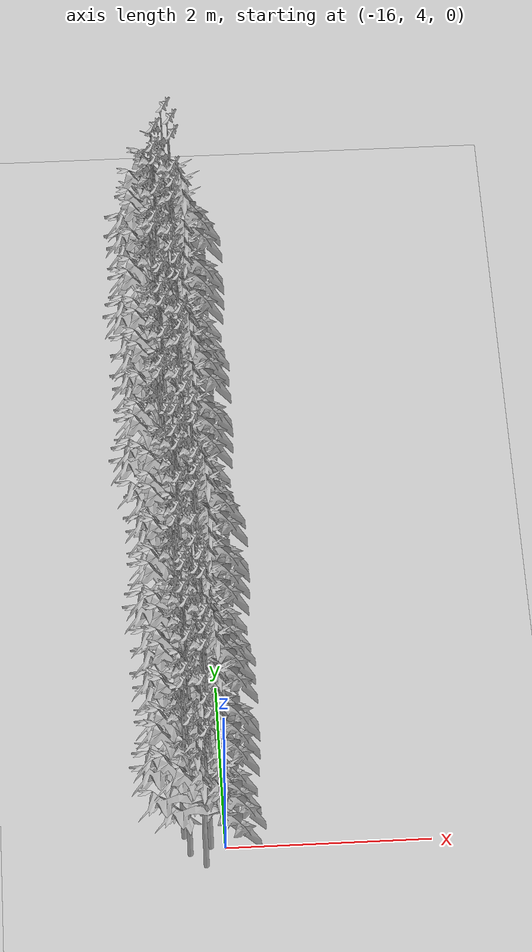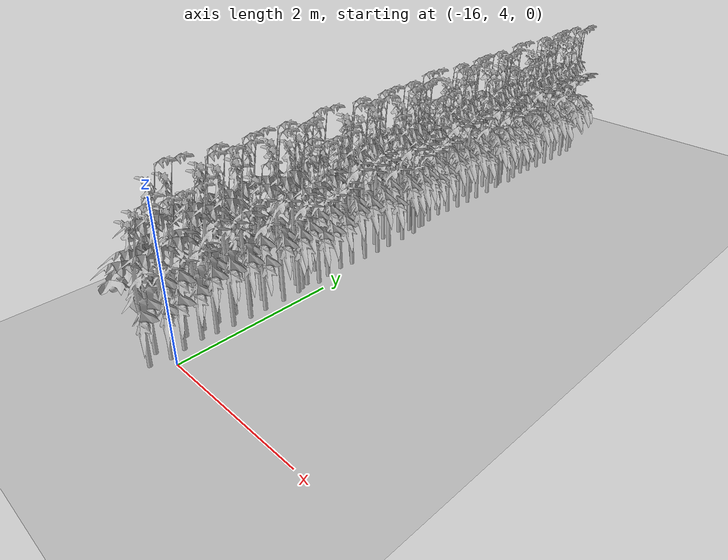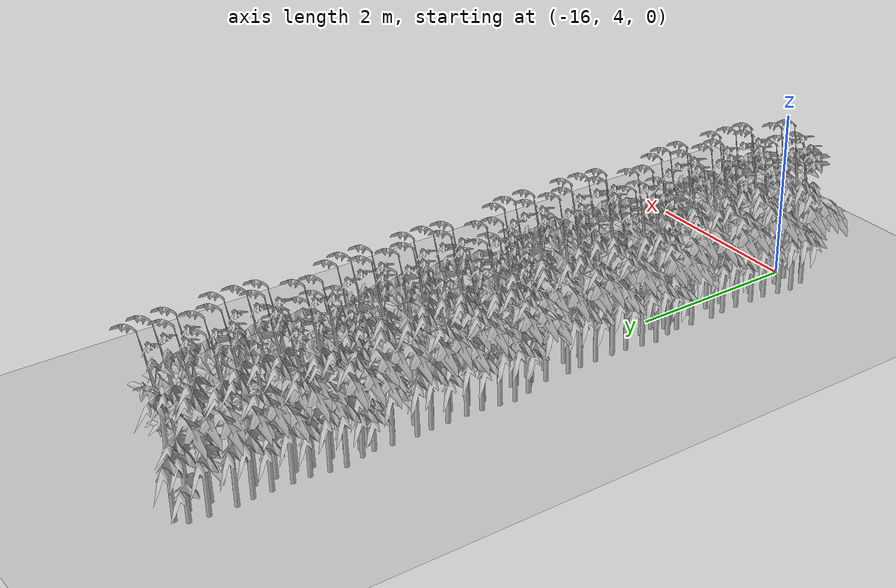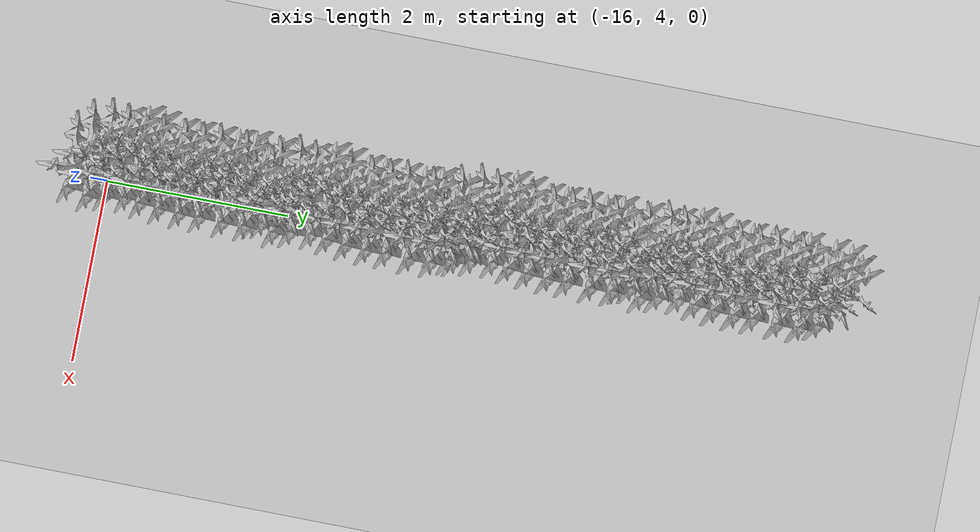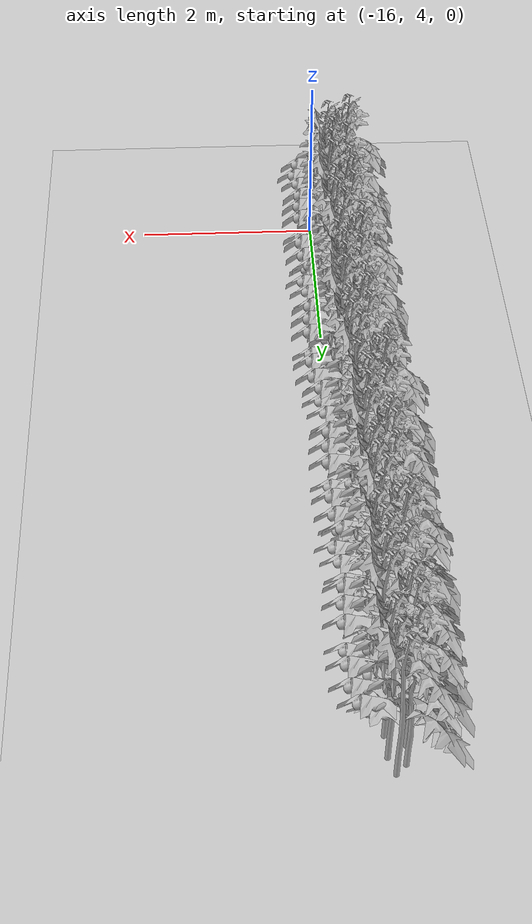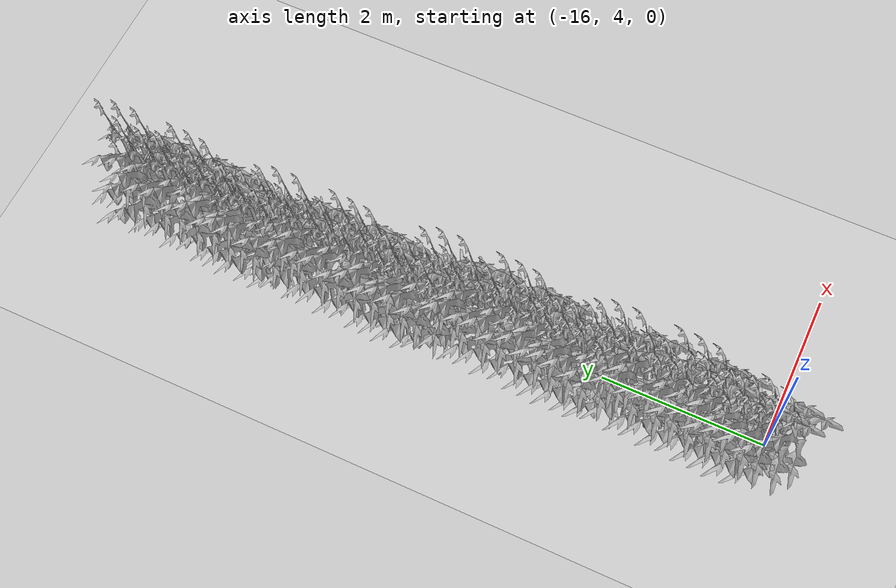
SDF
<sdf version="1.6">
 <world name="default">
  <model name="ground_plane">
   <static>1</static>
   <link name="link">
    <collision name="collision">
     <geometry><plane><normal>0 0 1</normal><size>100 100</size></plane></geometry>
     <surface>
      <contact><collide_bitmask>65535</collide_bitmask></contact>
      <friction><ode><mu>100</mu><mu2>50</mu2></ode></friction>
     </surface>
    </collision>
    <visual name="visual">
     <cast_shadows>0</cast_shadows>
     <geometry><plane><normal>0 0 1</normal><size>100 100</size></plane></geometry>
     <material>
      <script><uri>file://media/materials/scripts/gazebo.material</uri><name>Gazebo/Grey</name></script>
     </material>
    </visual>
   </link>
  </model>
  <model name="MIddle_Plant_3_1">
   <model name="MIddle_Plant_1">
    <model name="tomato_plant_big">
     <static>1</static>
     <link name="link">
      <collision name="collision">
       <pose>0 0 0 1.5708 -0 0</pose>
       <geometry><mesh><scale>0.5 0.6 0.5</scale><uri>model://stick/meshes/stick.dae</uri></mesh></geometry>
      </collision>
      <visual name="visual">
       <geometry>
        <mesh><scale>5e-06 5e-06 7e-06</scale><uri>model://tomato_plant_big/meshes/tomato-plant.dae</uri></mesh>
       </geometry>
      </visual>
     </link>
     <pose>-0.144318 -0.693607 -0 0 -0 0</pose>
    </model>
    <model name="tomato_plant_big_0">
     <static>1</static>
     <link name="link">
      <collision name="collision">
       <pose>0 0 0 1.5708 -0 0</pose>
       <geometry><mesh><scale>0.5 0.6 0.5</scale><uri>model://stick/meshes/stick.dae</uri></mesh></geometry>
      </collision>
      <visual name="visual">
       <geometry>
        <mesh><scale>5e-06 5e-06 7e-06</scale><uri>model://tomato_plant_big/meshes/tomato-plant.dae</uri></mesh>
       </geometry>
      </visual>
     </link>
     <pose>-0.11784 -0.519827 0 0 -0 0</pose>
    </model>
    <model name="tomato_plant_big_1">
     <static>1</static>
     <link name="link">
      <collision name="collision">
       <pose>0 0 0 1.5708 -0 0</pose>
       <geometry><mesh><scale>0.5 0.6 0.5</scale><uri>model://stick/meshes/stick.dae</uri></mesh></geometry>
      </collision>
      <visual name="visual">
       <geometry>
        <mesh><scale>5e-06 5e-06 7e-06</scale><uri>model://tomato_plant_big/meshes/tomato-plant.dae</uri></mesh>
       </geometry>
      </visual>
     </link>
     <pose>0.073755 -0.247584 0 0 -0 0</pose>
    </model>
    <model name="tomato_plant_big_10">
     <static>1</static>
     <link name="link">
      <collision name="collision">
       <pose>0 0 0 1.5708 -0 0</pose>
       <geometry><mesh><scale>0.5 0.6 0.5</scale><uri>model://stick/meshes/stick.dae</uri></mesh></geometry>
      </collision>
      <visual name="visual">
       <geometry>
        <mesh><scale>5e-06 5e-06 7e-06</scale><uri>model://tomato_plant_big/meshes/tomato-plant.dae</uri></mesh>
       </geometry>
      </visual>
     </link>
     <pose>0.037052 1.07094 0 0 -0 0</pose>
    </model>
    <model name="tomato_plant_big_2">
     <static>1</static>
     <link name="link">
      <collision name="collision">
       <pose>0 0 0 1.5708 -0 0</pose>
       <geometry><mesh><scale>0.5 0.6 0.5</scale><uri>model://stick/meshes/stick.dae</uri></mesh></geometry>
      </collision>
      <visual name="visual">
       <geometry>
        <mesh><scale>5e-06 5e-06 7e-06</scale><uri>model://tomato_plant_big/meshes/tomato-plant.dae</uri></mesh>
       </geometry>
      </visual>
     </link>
     <pose>-0.076926 -0.131165 0 0 -0 0</pose>
    </model>
    <model name="tomato_plant_big_3">
     <static>1</static>
     <link name="link">
      <collision name="collision">
       <pose>0 0 0 1.5708 -0 0</pose>
       <geometry><mesh><scale>0.5 0.6 0.5</scale><uri>model://stick/meshes/stick.dae</uri></mesh></geometry>
      </collision>
      <visual name="visual">
       <geometry>
        <mesh><scale>5e-06 5e-06 7e-06</scale><uri>model://tomato_plant_big/meshes/tomato-plant.dae</uri></mesh>
       </geometry>
      </visual>
     </link>
     <pose>0.093714 -0.038386 0 0 -0 0</pose>
    </model>
    <model name="tomato_plant_big_4">
     <static>1</static>
     <link name="link">
      <collision name="collision">
       <pose>0 0 0 1.5708 -0 0</pose>
       <geometry><mesh><scale>0.5 0.6 0.5</scale><uri>model://stick/meshes/stick.dae</uri></mesh></geometry>
      </collision>
      <visual name="visual">
       <geometry>
        <mesh><scale>5e-06 5e-06 7e-06</scale><uri>model://tomato_plant_big/meshes/tomato-plant.dae</uri></mesh>
       </geometry>
      </visual>
     </link>
     <pose>0.103117 0.184356 0 0 -0 0</pose>
    </model>
    <model name="tomato_plant_big_5">
     <static>1</static>
     <link name="link">
      <collision name="collision">
       <pose>0 0 0 1.5708 -0 0</pose>
       <geometry><mesh><scale>0.5 0.6 0.5</scale><uri>model://stick/meshes/stick.dae</uri></mesh></geometry>
      </collision>
      <visual name="visual">
       <geometry>
        <mesh><scale>5e-06 5e-06 7e-06</scale><uri>model://tomato_plant_big/meshes/tomato-plant.dae</uri></mesh>
       </geometry>
      </visual>
     </link>
     <pose>-0.074883 0.301479 0 0 -0 0</pose>
    </model>
    <model name="tomato_plant_big_6">
     <static>1</static>
     <link name="link">
      <collision name="collision">
       <pose>0 0 0 1.5708 -0 0</pose>
       <geometry><mesh><scale>0.5 0.6 0.5</scale><uri>model://stick/meshes/stick.dae</uri></mesh></geometry>
      </collision>
      <visual name="visual">
       <geometry>
        <mesh><scale>5e-06 5e-06 7e-06</scale><uri>model://tomato_plant_big/meshes/tomato-plant.dae</uri></mesh>
       </geometry>
      </visual>
     </link>
     <pose>-0.096921 0.484007 0 0 -0 0</pose>
    </model>
    <model name="tomato_plant_big_7">
     <static>1</static>
     <link name="link">
      <collision name="collision">
       <pose>0 0 0 1.5708 -0 0</pose>
       <geometry><mesh><scale>0.5 0.6 0.5</scale><uri>model://stick/meshes/stick.dae</uri></mesh></geometry>
      </collision>
      <visual name="visual">
       <geometry>
        <mesh><scale>5e-06 5e-06 7e-06</scale><uri>model://tomato_plant_big/meshes/tomato-plant.dae</uri></mesh>
       </geometry>
      </visual>
     </link>
     <pose>0.107491 0.653976 0 0 -0 0</pose>
    </model>
    <model name="tomato_plant_big_8">
     <static>1</static>
     <link name="link">
      <collision name="collision">
       <pose>0 0 0 1.5708 -0 0</pose>
       <geometry><mesh><scale>0.5 0.6 0.5</scale><uri>model://stick/meshes/stick.dae</uri></mesh></geometry>
      </collision>
      <visual name="visual">
       <geometry>
        <mesh><scale>5e-06 5e-06 7e-06</scale><uri>model://tomato_plant_big/meshes/tomato-plant.dae</uri></mesh>
       </geometry>
      </visual>
     </link>
     <pose>-0.07985 0.768549 0 0 -0 0</pose>
    </model>
    <model name="tomato_plant_big_9">
     <static>1</static>
     <link name="link">
      <collision name="collision">
       <pose>0 0 0 1.5708 -0 0</pose>
       <geometry><mesh><scale>0.5 0.6 0.5</scale><uri>model://stick/meshes/stick.dae</uri></mesh></geometry>
      </collision>
      <visual name="visual">
       <geometry>
        <mesh><scale>5e-06 5e-06 7e-06</scale><uri>model://tomato_plant_big/meshes/tomato-plant.dae</uri></mesh>
       </geometry>
      </visual>
     </link>
     <pose>0.098361 0.890852 0 0 -0 0</pose>
    </model>
    <model name="tomato_plant_medium">
     <static>1</static>
     <link name="link">
      <collision name="collision">
       <pose>0 0 0 1.5708 -0 0</pose>
       <geometry><mesh><scale>0.5 0.5 0.5</scale><uri>model://stick/meshes/stick.dae</uri></mesh></geometry>
      </collision>
      <visual name="visual">
       <geometry>
        <mesh><scale>5e-06 5e-06 6e-06</scale><uri>model://tomato_plant_medium/meshes/tomato-plant.dae</uri></mesh>
       </geometry>
      </visual>
     </link>
     <pose>0.056913 -1.05328 0 0 -0 0</pose>
    </model>
    <model name="tomato_plant_medium_0">
     <static>1</static>
     <link name="link">
      <collision name="collision">
       <pose>0 0 0 1.5708 -0 0</pose>
       <geometry><mesh><scale>0.5 0.5 0.5</scale><uri>model://stick/meshes/stick.dae</uri></mesh></geometry>
      </collision>
      <visual name="visual">
       <geometry>
        <mesh><scale>5e-06 5e-06 6e-06</scale><uri>model://tomato_plant_medium/meshes/tomato-plant.dae</uri></mesh>
       </geometry>
      </visual>
     </link>
     <pose>-0.092719 -0.905729 0 0 -0 0</pose>
    </model>
    <model name="tomato_plant_medium_1">
     <static>1</static>
     <link name="link">
      <collision name="collision">
       <pose>0 0 0 1.5708 -0 0</pose>
       <geometry><mesh><scale>0.5 0.5 0.5</scale><uri>model://stick/meshes/stick.dae</uri></mesh></geometry>
      </collision>
      <visual name="visual">
       <geometry>
        <mesh><scale>5e-06 5e-06 6e-06</scale><uri>model://tomato_plant_medium/meshes/tomato-plant.dae</uri></mesh>
       </geometry>
      </visual>
     </link>
     <pose>0.108962 -0.829637 0 0 -0 0</pose>
    </model>
    <model name="tomato_plant_medium_2">
     <static>1</static>
     <link name="link">
      <collision name="collision">
       <pose>0 0 0 1.5708 -0 0</pose>
       <geometry><mesh><scale>0.5 0.5 0.5</scale><uri>model://stick/meshes/stick.dae</uri></mesh></geometry>
      </collision>
      <visual name="visual">
       <geometry>
        <mesh><scale>5e-06 5e-06 6e-06</scale><uri>model://tomato_plant_medium/meshes/tomato-plant.dae</uri></mesh>
       </geometry>
      </visual>
     </link>
     <pose>0.071216 -0.652507 0 0 -0 0</pose>
    </model>
    <model name="tomato_plant_medium_3">
     <static>1</static>
     <link name="link">
      <collision name="collision">
       <pose>0 0 0 1.5708 -0 0</pose>
       <geometry><mesh><scale>0.5 0.5 0.5</scale><uri>model://stick/meshes/stick.dae</uri></mesh></geometry>
      </collision>
      <visual name="visual">
       <geometry>
        <mesh><scale>5e-06 5e-06 6e-06</scale><uri>model://tomato_plant_medium/meshes/tomato-plant.dae</uri></mesh>
       </geometry>
      </visual>
     </link>
     <pose>0.047335 -0.423046 0 0 -0 0</pose>
    </model>
    <model name="tomato_plant_medium_4">
     <static>1</static>
     <link name="link">
      <collision name="collision">
       <pose>0 0 0 1.5708 -0 0</pose>
       <geometry><mesh><scale>0.5 0.5 0.5</scale><uri>model://stick/meshes/stick.dae</uri></mesh></geometry>
      </collision>
      <visual name="visual">
       <geometry>
        <mesh><scale>5e-06 5e-06 6e-06</scale><uri>model://tomato_plant_medium/meshes/tomato-plant.dae</uri></mesh>
       </geometry>
      </visual>
     </link>
     <pose>-0.081012 -0.320324 0 0 -0 0</pose>
    </model>
    <model name="tomato_plant_medium_5">
     <static>1</static>
     <link name="link">
      <collision name="collision">
       <pose>0 0 0 1.5708 -0 0</pose>
       <geometry><mesh><scale>0.5 0.5 0.5</scale><uri>model://stick/meshes/stick.dae</uri></mesh></geometry>
      </collision>
      <visual name="visual">
       <geometry>
        <mesh><scale>5e-06 5e-06 6e-06</scale><uri>model://tomato_plant_medium/meshes/tomato-plant.dae</uri></mesh>
       </geometry>
      </visual>
     </link>
     <pose>-0.07452 0.095988 0 0 -0 0</pose>
    </model>
    <model name="tomato_plant_medium_6">
     <static>1</static>
     <link name="link">
      <collision name="collision">
       <pose>0 0 0 1.5708 -0 0</pose>
       <geometry><mesh><scale>0.5 0.5 0.5</scale><uri>model://stick/meshes/stick.dae</uri></mesh></geometry>
      </collision>
      <visual name="visual">
       <geometry>
        <mesh><scale>5e-06 5e-06 6e-06</scale><uri>model://tomato_plant_medium/meshes/tomato-plant.dae</uri></mesh>
       </geometry>
      </visual>
     </link>
     <pose>0.101424 0.395443 0 0 -0 0</pose>
    </model>
    <model name="tomato_plant_small">
     <static>1</static>
     <link name="link">
      <collision name="collision">
       <pose>0 0 0 1.5708 -0 0</pose>
       <geometry><mesh><scale>0.5 0.45 0.5</scale><uri>model://stick/meshes/stick.dae</uri></mesh></geometry>
      </collision>
      <visual name="visual">
       <geometry>
        <mesh><scale>5e-06 5e-06 5e-06</scale><uri>model://tomato_plant_small/meshes/tomato-plant.dae</uri></mesh>
       </geometry>
      </visual>
     </link>
     <pose>-0.060351 0.969512 0 0 -0 0</pose>
    </model>
    <static>0</static>
    <pose>0.040757 1.77284 0 0 -0 0</pose>
   </model>
   <model name="MIddle_Plant_2">
    <model name="MIddle_Plant_1">
     <model name="tomato_plant_big">
      <static>1</static>
      <link name="link">
       <collision name="collision">
        <pose>0 0 0 1.5708 -0 0</pose>
        <geometry><mesh><scale>0.5 0.6 0.5</scale><uri>model://stick/meshes/stick.dae</uri></mesh></geometry>
       </collision>
       <visual name="visual">
        <geometry>
         <mesh><scale>5e-06 5e-06 7e-06</scale><uri>model://tomato_plant_big/meshes/tomato-plant.dae</uri></mesh>
        </geometry>
       </visual>
      </link>
      <pose>-0.144318 -0.693607 -0 0 -0 0</pose>
     </model>
     <model name="tomato_plant_big_0">
      <static>1</static>
      <link name="link">
       <collision name="collision">
        <pose>0 0 0 1.5708 -0 0</pose>
        <geometry><mesh><scale>0.5 0.6 0.5</scale><uri>model://stick/meshes/stick.dae</uri></mesh></geometry>
       </collision>
       <visual name="visual">
        <geometry>
         <mesh><scale>5e-06 5e-06 7e-06</scale><uri>model://tomato_plant_big/meshes/tomato-plant.dae</uri></mesh>
        </geometry>
       </visual>
      </link>
      <pose>-0.11784 -0.519827 0 0 -0 0</pose>
     </model>
     <model name="tomato_plant_big_1">
      <static>1</static>
      <link name="link">
       <collision name="collision">
        <pose>0 0 0 1.5708 -0 0</pose>
        <geometry><mesh><scale>0.5 0.6 0.5</scale><uri>model://stick/meshes/stick.dae</uri></mesh></geometry>
       </collision>
       <visual name="visual">
        <geometry>
         <mesh><scale>5e-06 5e-06 7e-06</scale><uri>model://tomato_plant_big/meshes/tomato-plant.dae</uri></mesh>
        </geometry>
       </visual>
      </link>
      <pose>0.073755 -0.247584 0 0 -0 0</pose>
     </model>
     <model name="tomato_plant_big_10">
      <static>1</static>
      <link name="link">
       <collision name="collision">
        <pose>0 0 0 1.5708 -0 0</pose>
        <geometry><mesh><scale>0.5 0.6 0.5</scale><uri>model://stick/meshes/stick.dae</uri></mesh></geometry>
       </collision>
       <visual name="visual">
        <geometry>
         <mesh><scale>5e-06 5e-06 7e-06</scale><uri>model://tomato_plant_big/meshes/tomato-plant.dae</uri></mesh>
        </geometry>
       </visual>
      </link>
      <pose>0.037052 1.07094 0 0 -0 0</pose>
     </model>
     <model name="tomato_plant_big_2">
      <static>1</static>
      <link name="link">
       <collision name="collision">
        <pose>0 0 0 1.5708 -0 0</pose>
        <geometry><mesh><scale>0.5 0.6 0.5</scale><uri>model://stick/meshes/stick.dae</uri></mesh></geometry>
       </collision>
       <visual name="visual">
        <geometry>
         <mesh><scale>5e-06 5e-06 7e-06</scale><uri>model://tomato_plant_big/meshes/tomato-plant.dae</uri></mesh>
        </geometry>
       </visual>
      </link>
      <pose>-0.076926 -0.131165 0 0 -0 0</pose>
     </model>
     <model name="tomato_plant_big_3">
      <static>1</static>
      <link name="link">
       <collision name="collision">
        <pose>0 0 0 1.5708 -0 0</pose>
        <geometry><mesh><scale>0.5 0.6 0.5</scale><uri>model://stick/meshes/stick.dae</uri></mesh></geometry>
       </collision>
       <visual name="visual">
        <geometry>
         <mesh><scale>5e-06 5e-06 7e-06</scale><uri>model://tomato_plant_big/meshes/tomato-plant.dae</uri></mesh>
        </geometry>
       </visual>
      </link>
      <pose>0.093714 -0.038386 0 0 -0 0</pose>
     </model>
     <model name="tomato_plant_big_4">
      <static>1</static>
      <link name="link">
       <collision name="collision">
        <pose>0 0 0 1.5708 -0 0</pose>
        <geometry><mesh><scale>0.5 0.6 0.5</scale><uri>model://stick/meshes/stick.dae</uri></mesh></geometry>
       </collision>
       <visual name="visual">
        <geometry>
         <mesh><scale>5e-06 5e-06 7e-06</scale><uri>model://tomato_plant_big/meshes/tomato-plant.dae</uri></mesh>
        </geometry>
       </visual>
      </link>
      <pose>0.103117 0.184356 0 0 -0 0</pose>
     </model>
     <model name="tomato_plant_big_5">
      <static>1</static>
      <link name="link">
       <collision name="collision">
        <pose>0 0 0 1.5708 -0 0</pose>
        <geometry><mesh><scale>0.5 0.6 0.5</scale><uri>model://stick/meshes/stick.dae</uri></mesh></geometry>
       </collision>
       <visual name="visual">
        <geometry>
         <mesh><scale>5e-06 5e-06 7e-06</scale><uri>model://tomato_plant_big/meshes/tomato-plant.dae</uri></mesh>
        </geometry>
       </visual>
      </link>
      <pose>-0.074883 0.301479 0 0 -0 0</pose>
     </model>
     <model name="tomato_plant_big_6">
      <static>1</static>
      <link name="link">
       <collision name="collision">
        <pose>0 0 0 1.5708 -0 0</pose>
        <geometry><mesh><scale>0.5 0.6 0.5</scale><uri>model://stick/meshes/stick.dae</uri></mesh></geometry>
       </collision>
       <visual name="visual">
        <geometry>
         <mesh><scale>5e-06 5e-06 7e-06</scale><uri>model://tomato_plant_big/meshes/tomato-plant.dae</uri></mesh>
        </geometry>
       </visual>
      </link>
      <pose>-0.096921 0.484007 0 0 -0 0</pose>
     </model>
     <model name="tomato_plant_big_7">
      <static>1</static>
      <link name="link">
       <collision name="collision">
        <pose>0 0 0 1.5708 -0 0</pose>
        <geometry><mesh><scale>0.5 0.6 0.5</scale><uri>model://stick/meshes/stick.dae</uri></mesh></geometry>
       </collision>
       <visual name="visual">
        <geometry>
         <mesh><scale>5e-06 5e-06 7e-06</scale><uri>model://tomato_plant_big/meshes/tomato-plant.dae</uri></mesh>
        </geometry>
       </visual>
      </link>
      <pose>0.107491 0.653976 0 0 -0 0</pose>
     </model>
     <model name="tomato_plant_big_8">
      <static>1</static>
      <link name="link">
       <collision name="collision">
        <pose>0 0 0 1.5708 -0 0</pose>
        <geometry><mesh><scale>0.5 0.6 0.5</scale><uri>model://stick/meshes/stick.dae</uri></mesh></geometry>
       </collision>
       <visual name="visual">
        <geometry>
         <mesh><scale>5e-06 5e-06 7e-06</scale><uri>model://tomato_plant_big/meshes/tomato-plant.dae</uri></mesh>
        </geometry>
       </visual>
      </link>
      <pose>-0.07985 0.768549 0 0 -0 0</pose>
     </model>
     <model name="tomato_plant_big_9">
      <static>1</static>
      <link name="link">
       <collision name="collision">
        <pose>0 0 0 1.5708 -0 0</pose>
        <geometry><mesh><scale>0.5 0.6 0.5</scale><uri>model://stick/meshes/stick.dae</uri></mesh></geometry>
       </collision>
       <visual name="visual">
        <geometry>
         <mesh><scale>5e-06 5e-06 7e-06</scale><uri>model://tomato_plant_big/meshes/tomato-plant.dae</uri></mesh>
        </geometry>
       </visual>
      </link>
      <pose>0.098361 0.890852 0 0 -0 0</pose>
     </model>
     <model name="tomato_plant_medium">
      <static>1</static>
      <link name="link">
       <collision name="collision">
        <pose>0 0 0 1.5708 -0 0</pose>
        <geometry><mesh><scale>0.5 0.5 0.5</scale><uri>model://stick/meshes/stick.dae</uri></mesh></geometry>
       </collision>
       <visual name="visual">
        <geometry>
         <mesh><scale>5e-06 5e-06 6e-06</scale><uri>model://tomato_plant_medium/meshes/tomato-plant.dae</uri></mesh>
        </geometry>
       </visual>
      </link>
      <pose>0.056913 -1.05328 0 0 -0 0</pose>
     </model>
     <model name="tomato_plant_medium_0">
      <static>1</static>
      <link name="link">
       <collision name="collision">
        <pose>0 0 0 1.5708 -0 0</pose>
        <geometry><mesh><scale>0.5 0.5 0.5</scale><uri>model://stick/meshes/stick.dae</uri></mesh></geometry>
       </collision>
       <visual name="visual">
        <geometry>
         <mesh><scale>5e-06 5e-06 6e-06</scale><uri>model://tomato_plant_medium/meshes/tomato-plant.dae</uri></mesh>
        </geometry>
       </visual>
      </link>
      <pose>-0.092719 -0.905729 0 0 -0 0</pose>
     </model>
     <model name="tomato_plant_medium_1">
      <static>1</static>
      <link name="link">
       <collision name="collision">
        <pose>0 0 0 1.5708 -0 0</pose>
        <geometry><mesh><scale>0.5 0.5 0.5</scale><uri>model://stick/meshes/stick.dae</uri></mesh></geometry>
       </collision>
       <visual name="visual">
        <geometry>
         <mesh><scale>5e-06 5e-06 6e-06</scale><uri>model://tomato_plant_medium/meshes/tomato-plant.dae</uri></mesh>
        </geometry>
       </visual>
      </link>
      <pose>0.108962 -0.829637 0 0 -0 0</pose>
     </model>
     <model name="tomato_plant_medium_2">
      <static>1</static>
      <link name="link">
       <collision name="collision">
        <pose>0 0 0 1.5708 -0 0</pose>
        <geometry><mesh><scale>0.5 0.5 0.5</scale><uri>model://stick/meshes/stick.dae</uri></mesh></geometry>
       </collision>
       <visual name="visual">
        <geometry>
         <mesh><scale>5e-06 5e-06 6e-06</scale><uri>model://tomato_plant_medium/meshes/tomato-plant.dae</uri></mesh>
        </geometry>
       </visual>
      </link>
      <pose>0.071216 -0.652507 0 0 -0 0</pose>
     </model>
     <model name="tomato_plant_medium_3">
      <static>1</static>
      <link name="link">
       <collision name="collision">
        <pose>0 0 0 1.5708 -0 0</pose>
        <geometry><mesh><scale>0.5 0.5 0.5</scale><uri>model://stick/meshes/stick.dae</uri></mesh></geometry>
       </collision>
       <visual name="visual">
        <geometry>
         <mesh><scale>5e-06 5e-06 6e-06</scale><uri>model://tomato_plant_medium/meshes/tomato-plant.dae</uri></mesh>
        </geometry>
       </visual>
      </link>
      <pose>0.047335 -0.423046 0 0 -0 0</pose>
     </model>
     <model name="tomato_plant_medium_4">
      <static>1</static>
      <link name="link">
       <collision name="collision">
        <pose>0 0 0 1.5708 -0 0</pose>
        <geometry><mesh><scale>0.5 0.5 0.5</scale><uri>model://stick/meshes/stick.dae</uri></mesh></geometry>
       </collision>
       <visual name="visual">
        <geometry>
         <mesh><scale>5e-06 5e-06 6e-06</scale><uri>model://tomato_plant_medium/meshes/tomato-plant.dae</uri></mesh>
        </geometry>
       </visual>
      </link>
      <pose>-0.081012 -0.320324 0 0 -0 0</pose>
     </model>
     <model name="tomato_plant_medium_5">
      <static>1</static>
      <link name="link">
       <collision name="collision">
        <pose>0 0 0 1.5708 -0 0</pose>
        <geometry><mesh><scale>0.5 0.5 0.5</scale><uri>model://stick/meshes/stick.dae</uri></mesh></geometry>
       </collision>
       <visual name="visual">
        <geometry>
         <mesh><scale>5e-06 5e-06 6e-06</scale><uri>model://tomato_plant_medium/meshes/tomato-plant.dae</uri></mesh>
        </geometry>
       </visual>
      </link>
      <pose>-0.07452 0.095988 0 0 -0 0</pose>
     </model>
     <model name="tomato_plant_medium_6">
      <static>1</static>
      <link name="link">
       <collision name="collision">
        <pose>0 0 0 1.5708 -0 0</pose>
        <geometry><mesh><scale>0.5 0.5 0.5</scale><uri>model://stick/meshes/stick.dae</uri></mesh></geometry>
       </collision>
       <visual name="visual">
        <geometry>
         <mesh><scale>5e-06 5e-06 6e-06</scale><uri>model://tomato_plant_medium/meshes/tomato-plant.dae</uri></mesh>
        </geometry>
       </visual>
      </link>
      <pose>0.101424 0.395443 0 0 -0 0</pose>
     </model>
     <model name="tomato_plant_small">
      <static>1</static>
      <link name="link">
       <collision name="collision">
        <pose>0 0 0 1.5708 -0 0</pose>
        <geometry><mesh><scale>0.5 0.45 0.5</scale><uri>model://stick/meshes/stick.dae</uri></mesh></geometry>
       </collision>
       <visual name="visual">
        <geometry>
         <mesh><scale>5e-06 5e-06 5e-06</scale><uri>model://tomato_plant_small/meshes/tomato-plant.dae</uri></mesh>
        </geometry>
       </visual>
      </link>
      <pose>-0.060351 0.969512 0 0 -0 0</pose>
     </model>
     <static>0</static>
     <pose>0.763113 0.028917 0 0 -0 0</pose>
    </model>
    <model name="tomato_plant_big">
     <static>1</static>
     <link name="link">
      <collision name="collision">
       <pose>0 0 0 1.5708 -0 0</pose>
       <geometry><mesh><scale>0.5 0.6 0.5</scale><uri>model://stick/meshes/stick.dae</uri></mesh></geometry>
      </collision>
      <visual name="visual">
       <geometry>
        <mesh><scale>5e-06 5e-06 7e-06</scale><uri>model://tomato_plant_big/meshes/tomato-plant.dae</uri></mesh>
       </geometry>
      </visual>
     </link>
     <pose>0.613724 -2.69399 -0 0 -0 0</pose>
    </model>
    <model name="tomato_plant_big_0">
     <static>1</static>
     <link name="link">
      <collision name="collision">
       <pose>0 0 0 1.5708 -0 0</pose>
       <geometry><mesh><scale>0.5 0.6 0.5</scale><uri>model://stick/meshes/stick.dae</uri></mesh></geometry>
      </collision>
      <visual name="visual">
       <geometry>
        <mesh><scale>5e-06 5e-06 7e-06</scale><uri>model://tomato_plant_big/meshes/tomato-plant.dae</uri></mesh>
       </geometry>
      </visual>
     </link>
     <pose>0.640202 -2.52021 0 0 -0 0</pose>
    </model>
    <model name="tomato_plant_big_1">
     <static>1</static>
     <link name="link">
      <collision name="collision">
       <pose>0 0 0 1.5708 -0 0</pose>
       <geometry><mesh><scale>0.5 0.6 0.5</scale><uri>model://stick/meshes/stick.dae</uri></mesh></geometry>
      </collision>
      <visual name="visual">
       <geometry>
        <mesh><scale>5e-06 5e-06 7e-06</scale><uri>model://tomato_plant_big/meshes/tomato-plant.dae</uri></mesh>
       </geometry>
      </visual>
     </link>
     <pose>0.831797 -2.24797 0 0 -0 0</pose>
    </model>
    <model name="tomato_plant_big_10">
     <static>1</static>
     <link name="link">
      <collision name="collision">
       <pose>0 0 0 1.5708 -0 0</pose>
       <geometry><mesh><scale>0.5 0.6 0.5</scale><uri>model://stick/meshes/stick.dae</uri></mesh></geometry>
      </collision>
      <visual name="visual">
       <geometry>
        <mesh><scale>5e-06 5e-06 7e-06</scale><uri>model://tomato_plant_big/meshes/tomato-plant.dae</uri></mesh>
       </geometry>
      </visual>
     </link>
     <pose>0.795094 -0.929446 0 0 -0 0</pose>
    </model>
    <model name="tomato_plant_big_2">
     <static>1</static>
     <link name="link">
      <collision name="collision">
       <pose>0 0 0 1.5708 -0 0</pose>
       <geometry><mesh><scale>0.5 0.6 0.5</scale><uri>model://stick/meshes/stick.dae</uri></mesh></geometry>
      </collision>
      <visual name="visual">
       <geometry>
        <mesh><scale>5e-06 5e-06 7e-06</scale><uri>model://tomato_plant_big/meshes/tomato-plant.dae</uri></mesh>
       </geometry>
      </visual>
     </link>
     <pose>0.681116 -2.13155 0 0 -0 0</pose>
    </model>
    <model name="tomato_plant_big_3">
     <static>1</static>
     <link name="link">
      <collision name="collision">
       <pose>0 0 0 1.5708 -0 0</pose>
       <geometry><mesh><scale>0.5 0.6 0.5</scale><uri>model://stick/meshes/stick.dae</uri></mesh></geometry>
      </collision>
      <visual name="visual">
       <geometry>
        <mesh><scale>5e-06 5e-06 7e-06</scale><uri>model://tomato_plant_big/meshes/tomato-plant.dae</uri></mesh>
       </geometry>
      </visual>
     </link>
     <pose>0.851755 -2.03877 0 0 -0 0</pose>
    </model>
    <model name="tomato_plant_big_4">
     <static>1</static>
     <link name="link">
      <collision name="collision">
       <pose>0 0 0 1.5708 -0 0</pose>
       <geometry><mesh><scale>0.5 0.6 0.5</scale><uri>model://stick/meshes/stick.dae</uri></mesh></geometry>
      </collision>
      <visual name="visual">
       <geometry>
        <mesh><scale>5e-06 5e-06 7e-06</scale><uri>model://tomato_plant_big/meshes/tomato-plant.dae</uri></mesh>
       </geometry>
      </visual>
     </link>
     <pose>0.861158 -1.81603 0 0 -0 0</pose>
    </model>
    <model name="tomato_plant_big_5">
     <static>1</static>
     <link name="link">
      <collision name="collision">
       <pose>0 0 0 1.5708 -0 0</pose>
       <geometry><mesh><scale>0.5 0.6 0.5</scale><uri>model://stick/meshes/stick.dae</uri></mesh></geometry>
      </collision>
      <visual name="visual">
       <geometry>
        <mesh><scale>5e-06 5e-06 7e-06</scale><uri>model://tomato_plant_big/meshes/tomato-plant.dae</uri></mesh>
       </geometry>
      </visual>
     </link>
     <pose>0.683158 -1.69891 0 0 -0 0</pose>
    </model>
    <model name="tomato_plant_big_6">
     <static>1</static>
     <link name="link">
      <collision name="collision">
       <pose>0 0 0 1.5708 -0 0</pose>
       <geometry><mesh><scale>0.5 0.6 0.5</scale><uri>model://stick/meshes/stick.dae</uri></mesh></geometry>
      </collision>
      <visual name="visual">
       <geometry>
        <mesh><scale>5e-06 5e-06 7e-06</scale><uri>model://tomato_plant_big/meshes/tomato-plant.dae</uri></mesh>
       </geometry>
      </visual>
     </link>
     <pose>0.66112 -1.51638 0 0 -0 0</pose>
    </model>
    <model name="tomato_plant_big_7">
     <static>1</static>
     <link name="link">
      <collision name="collision">
       <pose>0 0 0 1.5708 -0 0</pose>
       <geometry><mesh><scale>0.5 0.6 0.5</scale><uri>model://stick/meshes/stick.dae</uri></mesh></geometry>
      </collision>
      <visual name="visual">
       <geometry>
        <mesh><scale>5e-06 5e-06 7e-06</scale><uri>model://tomato_plant_big/meshes/tomato-plant.dae</uri></mesh>
       </geometry>
      </visual>
     </link>
     <pose>0.865532 -1.34641 0 0 -0 0</pose>
    </model>
    <model name="tomato_plant_big_8">
     <static>1</static>
     <link name="link">
      <collision name="collision">
       <pose>0 0 0 1.5708 -0 0</pose>
       <geometry><mesh><scale>0.5 0.6 0.5</scale><uri>model://stick/meshes/stick.dae</uri></mesh></geometry>
      </collision>
      <visual name="visual">
       <geometry>
        <mesh><scale>5e-06 5e-06 7e-06</scale><uri>model://tomato_plant_big/meshes/tomato-plant.dae</uri></mesh>
       </geometry>
      </visual>
     </link>
     <pose>0.678192 -1.23184 0 0 -0 0</pose>
    </model>
    <model name="tomato_plant_big_9">
     <static>1</static>
     <link name="link">
      <collision name="collision">
       <pose>0 0 0 1.5708 -0 0</pose>
       <geometry><mesh><scale>0.5 0.6 0.5</scale><uri>model://stick/meshes/stick.dae</uri></mesh></geometry>
      </collision>
      <visual name="visual">
       <geometry>
        <mesh><scale>5e-06 5e-06 7e-06</scale><uri>model://tomato_plant_big/meshes/tomato-plant.dae</uri></mesh>
       </geometry>
      </visual>
     </link>
     <pose>0.856402 -1.10953 0 0 -0 0</pose>
    </model>
    <model name="tomato_plant_medium">
     <static>1</static>
     <link name="link">
      <collision name="collision">
       <pose>0 0 0 1.5708 -0 0</pose>
       <geometry><mesh><scale>0.5 0.5 0.5</scale><uri>model://stick/meshes/stick.dae</uri></mesh></geometry>
      </collision>
      <visual name="visual">
       <geometry>
        <mesh><scale>5e-06 5e-06 6e-06</scale><uri>model://tomato_plant_medium/meshes/tomato-plant.dae</uri></mesh>
       </geometry>
      </visual>
     </link>
     <pose>0.814955 -3.05367 0 0 -0 0</pose>
    </model>
    <model name="tomato_plant_medium_0">
     <static>1</static>
     <link name="link">
      <collision name="collision">
       <pose>0 0 0 1.5708 -0 0</pose>
       <geometry><mesh><scale>0.5 0.5 0.5</scale><uri>model://stick/meshes/stick.dae</uri></mesh></geometry>
      </collision>
      <visual name="visual">
       <geometry>
        <mesh><scale>5e-06 5e-06 6e-06</scale><uri>model://tomato_plant_medium/meshes/tomato-plant.dae</uri></mesh>
       </geometry>
      </visual>
     </link>
     <pose>0.665322 -2.90611 0 0 -0 0</pose>
    </model>
    <model name="tomato_plant_medium_1">
     <static>1</static>
     <link name="link">
      <collision name="collision">
       <pose>0 0 0 1.5708 -0 0</pose>
       <geometry><mesh><scale>0.5 0.5 0.5</scale><uri>model://stick/meshes/stick.dae</uri></mesh></geometry>
      </collision>
      <visual name="visual">
       <geometry>
        <mesh><scale>5e-06 5e-06 6e-06</scale><uri>model://tomato_plant_medium/meshes/tomato-plant.dae</uri></mesh>
       </geometry>
      </visual>
     </link>
     <pose>0.867004 -2.83002 0 0 -0 0</pose>
    </model>
    <model name="tomato_plant_medium_2">
     <static>1</static>
     <link name="link">
      <collision name="collision">
       <pose>0 0 0 1.5708 -0 0</pose>
       <geometry><mesh><scale>0.5 0.5 0.5</scale><uri>model://stick/meshes/stick.dae</uri></mesh></geometry>
      </collision>
      <visual name="visual">
       <geometry>
        <mesh><scale>5e-06 5e-06 6e-06</scale><uri>model://tomato_plant_medium/meshes/tomato-plant.dae</uri></mesh>
       </geometry>
      </visual>
     </link>
     <pose>0.829257 -2.65289 0 0 -0 0</pose>
    </model>
    <model name="tomato_plant_medium_3">
     <static>1</static>
     <link name="link">
      <collision name="collision">
       <pose>0 0 0 1.5708 -0 0</pose>
       <geometry><mesh><scale>0.5 0.5 0.5</scale><uri>model://stick/meshes/stick.dae</uri></mesh></geometry>
      </collision>
      <visual name="visual">
       <geometry>
        <mesh><scale>5e-06 5e-06 6e-06</scale><uri>model://tomato_plant_medium/meshes/tomato-plant.dae</uri></mesh>
       </geometry>
      </visual>
     </link>
     <pose>0.805376 -2.42343 0 0 -0 0</pose>
    </model>
    <model name="tomato_plant_medium_4">
     <static>1</static>
     <link name="link">
      <collision name="collision">
       <pose>0 0 0 1.5708 -0 0</pose>
       <geometry><mesh><scale>0.5 0.5 0.5</scale><uri>model://stick/meshes/stick.dae</uri></mesh></geometry>
      </collision>
      <visual name="visual">
       <geometry>
        <mesh><scale>5e-06 5e-06 6e-06</scale><uri>model://tomato_plant_medium/meshes/tomato-plant.dae</uri></mesh>
       </geometry>
      </visual>
     </link>
     <pose>0.67703 -2.32071 0 0 -0 0</pose>
    </model>
    <model name="tomato_plant_medium_5">
     <static>1</static>
     <link name="link">
      <collision name="collision">
       <pose>0 0 0 1.5708 -0 0</pose>
       <geometry><mesh><scale>0.5 0.5 0.5</scale><uri>model://stick/meshes/stick.dae</uri></mesh></geometry>
      </collision>
      <visual name="visual">
       <geometry>
        <mesh><scale>5e-06 5e-06 6e-06</scale><uri>model://tomato_plant_medium/meshes/tomato-plant.dae</uri></mesh>
       </geometry>
      </visual>
     </link>
     <pose>0.683522 -1.9044 0 0 -0 0</pose>
    </model>
    <model name="tomato_plant_medium_6">
     <static>1</static>
     <link name="link">
      <collision name="collision">
       <pose>0 0 0 1.5708 -0 0</pose>
       <geometry><mesh><scale>0.5 0.5 0.5</scale><uri>model://stick/meshes/stick.dae</uri></mesh></geometry>
      </collision>
      <visual name="visual">
       <geometry>
        <mesh><scale>5e-06 5e-06 6e-06</scale><uri>model://tomato_plant_medium/meshes/tomato-plant.dae</uri></mesh>
       </geometry>
      </visual>
     </link>
     <pose>0.859466 -1.60494 0 0 -0 0</pose>
    </model>
    <model name="tomato_plant_small">
     <static>1</static>
     <link name="link">
      <collision name="collision">
       <pose>0 0 0 1.5708 -0 0</pose>
       <geometry><mesh><scale>0.5 0.45 0.5</scale><uri>model://stick/meshes/stick.dae</uri></mesh></geometry>
      </collision>
      <visual name="visual">
       <geometry>
        <mesh><scale>5e-06 5e-06 5e-06</scale><uri>model://tomato_plant_small/meshes/tomato-plant.dae</uri></mesh>
       </geometry>
      </visual>
     </link>
     <pose>0.697691 -1.03087 0 0 -0 0</pose>
    </model>
    <static>0</static>
    <pose>-0.78485 5.73439 0 0 -0 0</pose>
   </model>
   <model name="tomato_plant_big">
    <static>1</static>
    <link name="link">
     <collision name="collision">
      <pose>0 0 0 1.5708 -0 0</pose>
      <geometry><mesh><scale>0.5 0.6 0.5</scale><uri>model://stick/meshes/stick.dae</uri></mesh></geometry>
     </collision>
     <visual name="visual">
      <geometry>
       <mesh><scale>5e-06 5e-06 7e-06</scale><uri>model://tomato_plant_big/meshes/tomato-plant.dae</uri></mesh>
      </geometry>
     </visual>
    </link>
    <pose>-0.108632 -0.950068 -0 0 -0 0</pose>
   </model>
   <model name="tomato_plant_big_0">
    <static>1</static>
    <link name="link">
     <collision name="collision">
      <pose>0 0 0 1.5708 -0 0</pose>
      <geometry><mesh><scale>0.5 0.6 0.5</scale><uri>model://stick/meshes/stick.dae</uri></mesh></geometry>
     </collision>
     <visual name="visual">
      <geometry>
       <mesh><scale>5e-06 5e-06 7e-06</scale><uri>model://tomato_plant_big/meshes/tomato-plant.dae</uri></mesh>
      </geometry>
     </visual>
    </link>
    <pose>-0.082154 -0.776288 0 0 -0 0</pose>
   </model>
   <model name="tomato_plant_big_1">
    <static>1</static>
    <link name="link">
     <collision name="collision">
      <pose>0 0 0 1.5708 -0 0</pose>
      <geometry><mesh><scale>0.5 0.6 0.5</scale><uri>model://stick/meshes/stick.dae</uri></mesh></geometry>
     </collision>
     <visual name="visual">
      <geometry>
       <mesh><scale>5e-06 5e-06 7e-06</scale><uri>model://tomato_plant_big/meshes/tomato-plant.dae</uri></mesh>
      </geometry>
     </visual>
    </link>
    <pose>0.109441 -0.504045 0 0 -0 0</pose>
   </model>
   <model name="tomato_plant_big_10">
    <static>1</static>
    <link name="link">
     <collision name="collision">
      <pose>0 0 0 1.5708 -0 0</pose>
      <geometry><mesh><scale>0.5 0.6 0.5</scale><uri>model://stick/meshes/stick.dae</uri></mesh></geometry>
     </collision>
     <visual name="visual">
      <geometry>
       <mesh><scale>5e-06 5e-06 7e-06</scale><uri>model://tomato_plant_big/meshes/tomato-plant.dae</uri></mesh>
      </geometry>
     </visual>
    </link>
    <pose>0.072738 0.814477 0 0 -0 0</pose>
   </model>
   <model name="tomato_plant_big_2">
    <static>1</static>
    <link name="link">
     <collision name="collision">
      <pose>0 0 0 1.5708 -0 0</pose>
      <geometry><mesh><scale>0.5 0.6 0.5</scale><uri>model://stick/meshes/stick.dae</uri></mesh></geometry>
     </collision>
     <visual name="visual">
      <geometry>
       <mesh><scale>5e-06 5e-06 7e-06</scale><uri>model://tomato_plant_big/meshes/tomato-plant.dae</uri></mesh>
      </geometry>
     </visual>
    </link>
    <pose>-0.04124 -0.387626 0 0 -0 0</pose>
   </model>
   <model name="tomato_plant_big_3">
    <static>1</static>
    <link name="link">
     <collision name="collision">
      <pose>0 0 0 1.5708 -0 0</pose>
      <geometry><mesh><scale>0.5 0.6 0.5</scale><uri>model://stick/meshes/stick.dae</uri></mesh></geometry>
     </collision>
     <visual name="visual">
      <geometry>
       <mesh><scale>5e-06 5e-06 7e-06</scale><uri>model://tomato_plant_big/meshes/tomato-plant.dae</uri></mesh>
      </geometry>
     </visual>
    </link>
    <pose>0.129399 -0.294847 0 0 -0 0</pose>
   </model>
   <model name="tomato_plant_big_4">
    <static>1</static>
    <link name="link">
     <collision name="collision">
      <pose>0 0 0 1.5708 -0 0</pose>
      <geometry><mesh><scale>0.5 0.6 0.5</scale><uri>model://stick/meshes/stick.dae</uri></mesh></geometry>
     </collision>
     <visual name="visual">
      <geometry>
       <mesh><scale>5e-06 5e-06 7e-06</scale><uri>model://tomato_plant_big/meshes/tomato-plant.dae</uri></mesh>
      </geometry>
     </visual>
    </link>
    <pose>0.138802 -0.072105 0 0 -0 0</pose>
   </model>
   <model name="tomato_plant_big_5">
    <static>1</static>
    <link name="link">
     <collision name="collision">
      <pose>0 0 0 1.5708 -0 0</pose>
      <geometry><mesh><scale>0.5 0.6 0.5</scale><uri>model://stick/meshes/stick.dae</uri></mesh></geometry>
     </collision>
     <visual name="visual">
      <geometry>
       <mesh><scale>5e-06 5e-06 7e-06</scale><uri>model://tomato_plant_big/meshes/tomato-plant.dae</uri></mesh>
      </geometry>
     </visual>
    </link>
    <pose>-0.039198 0.045018 0 0 -0 0</pose>
   </model>
   <model name="tomato_plant_big_6">
    <static>1</static>
    <link name="link">
     <collision name="collision">
      <pose>0 0 0 1.5708 -0 0</pose>
      <geometry><mesh><scale>0.5 0.6 0.5</scale><uri>model://stick/meshes/stick.dae</uri></mesh></geometry>
     </collision>
     <visual name="visual">
      <geometry>
       <mesh><scale>5e-06 5e-06 7e-06</scale><uri>model://tomato_plant_big/meshes/tomato-plant.dae</uri></mesh>
      </geometry>
     </visual>
    </link>
    <pose>-0.061236 0.227546 0 0 -0 0</pose>
   </model>
   <model name="tomato_plant_big_7">
    <static>1</static>
    <link name="link">
     <collision name="collision">
      <pose>0 0 0 1.5708 -0 0</pose>
      <geometry><mesh><scale>0.5 0.6 0.5</scale><uri>model://stick/meshes/stick.dae</uri></mesh></geometry>
     </collision>
     <visual name="visual">
      <geometry>
       <mesh><scale>5e-06 5e-06 7e-06</scale><uri>model://tomato_plant_big/meshes/tomato-plant.dae</uri></mesh>
      </geometry>
     </visual>
    </link>
    <pose>0.143176 0.397515 0 0 -0 0</pose>
   </model>
   <model name="tomato_plant_big_8">
    <static>1</static>
    <link name="link">
     <collision name="collision">
      <pose>0 0 0 1.5708 -0 0</pose>
      <geometry><mesh><scale>0.5 0.6 0.5</scale><uri>model://stick/meshes/stick.dae</uri></mesh></geometry>
     </collision>
     <visual name="visual">
      <geometry>
       <mesh><scale>5e-06 5e-06 7e-06</scale><uri>model://tomato_plant_big/meshes/tomato-plant.dae</uri></mesh>
      </geometry>
     </visual>
    </link>
    <pose>-0.044164 0.512088 0 0 -0 0</pose>
   </model>
   <model name="tomato_plant_big_9">
    <static>1</static>
    <link name="link">
     <collision name="collision">
      <pose>0 0 0 1.5708 -0 0</pose>
      <geometry><mesh><scale>0.5 0.6 0.5</scale><uri>model://stick/meshes/stick.dae</uri></mesh></geometry>
     </collision>
     <visual name="visual">
      <geometry>
       <mesh><scale>5e-06 5e-06 7e-06</scale><uri>model://tomato_plant_big/meshes/tomato-plant.dae</uri></mesh>
      </geometry>
     </visual>
    </link>
    <pose>0.134046 0.634391 0 0 -0 0</pose>
   </model>
   <model name="tomato_plant_medium">
    <static>1</static>
    <link name="link">
     <collision name="collision">
      <pose>0 0 0 1.5708 -0 0</pose>
      <geometry><mesh><scale>0.5 0.5 0.5</scale><uri>model://stick/meshes/stick.dae</uri></mesh></geometry>
     </collision>
     <visual name="visual">
      <geometry>
       <mesh><scale>5e-06 5e-06 6e-06</scale><uri>model://tomato_plant_medium/meshes/tomato-plant.dae</uri></mesh>
      </geometry>
     </visual>
    </link>
    <pose>0.092599 -1.30974 0 0 -0 0</pose>
   </model>
   <model name="tomato_plant_medium_0">
    <static>1</static>
    <link name="link">
     <collision name="collision">
      <pose>0 0 0 1.5708 -0 0</pose>
      <geometry><mesh><scale>0.5 0.5 0.5</scale><uri>model://stick/meshes/stick.dae</uri></mesh></geometry>
     </collision>
     <visual name="visual">
      <geometry>
       <mesh><scale>5e-06 5e-06 6e-06</scale><uri>model://tomato_plant_medium/meshes/tomato-plant.dae</uri></mesh>
      </geometry>
     </visual>
    </link>
    <pose>-0.057034 -1.16219 0 0 -0 0</pose>
   </model>
   <model name="tomato_plant_medium_1">
    <static>1</static>
    <link name="link">
     <collision name="collision">
      <pose>0 0 0 1.5708 -0 0</pose>
      <geometry><mesh><scale>0.5 0.5 0.5</scale><uri>model://stick/meshes/stick.dae</uri></mesh></geometry>
     </collision>
     <visual name="visual">
      <geometry>
       <mesh><scale>5e-06 5e-06 6e-06</scale><uri>model://tomato_plant_medium/meshes/tomato-plant.dae</uri></mesh>
      </geometry>
     </visual>
    </link>
    <pose>0.144648 -1.0861 0 0 -0 0</pose>
   </model>
   <model name="tomato_plant_medium_2">
    <static>1</static>
    <link name="link">
     <collision name="collision">
      <pose>0 0 0 1.5708 -0 0</pose>
      <geometry><mesh><scale>0.5 0.5 0.5</scale><uri>model://stick/meshes/stick.dae</uri></mesh></geometry>
     </collision>
     <visual name="visual">
      <geometry>
       <mesh><scale>5e-06 5e-06 6e-06</scale><uri>model://tomato_plant_medium/meshes/tomato-plant.dae</uri></mesh>
      </geometry>
     </visual>
    </link>
    <pose>0.106901 -0.908968 0 0 -0 0</pose>
   </model>
   <model name="tomato_plant_medium_3">
    <static>1</static>
    <link name="link">
     <collision name="collision">
      <pose>0 0 0 1.5708 -0 0</pose>
      <geometry><mesh><scale>0.5 0.5 0.5</scale><uri>model://stick/meshes/stick.dae</uri></mesh></geometry>
     </collision>
     <visual name="visual">
      <geometry>
       <mesh><scale>5e-06 5e-06 6e-06</scale><uri>model://tomato_plant_medium/meshes/tomato-plant.dae</uri></mesh>
      </geometry>
     </visual>
    </link>
    <pose>0.08302 -0.679508 0 0 -0 0</pose>
   </model>
   <model name="tomato_plant_medium_4">
    <static>1</static>
    <link name="link">
     <collision name="collision">
      <pose>0 0 0 1.5708 -0 0</pose>
      <geometry><mesh><scale>0.5 0.5 0.5</scale><uri>model://stick/meshes/stick.dae</uri></mesh></geometry>
     </collision>
     <visual name="visual">
      <geometry>
       <mesh><scale>5e-06 5e-06 6e-06</scale><uri>model://tomato_plant_medium/meshes/tomato-plant.dae</uri></mesh>
      </geometry>
     </visual>
    </link>
    <pose>-0.045326 -0.576785 0 0 -0 0</pose>
   </model>
   <model name="tomato_plant_medium_5">
    <static>1</static>
    <link name="link">
     <collision name="collision">
      <pose>0 0 0 1.5708 -0 0</pose>
      <geometry><mesh><scale>0.5 0.5 0.5</scale><uri>model://stick/meshes/stick.dae</uri></mesh></geometry>
     </collision>
     <visual name="visual">
      <geometry>
       <mesh><scale>5e-06 5e-06 6e-06</scale><uri>model://tomato_plant_medium/meshes/tomato-plant.dae</uri></mesh>
      </geometry>
     </visual>
    </link>
    <pose>-0.038834 -0.160473 0 0 -0 0</pose>
   </model>
   <model name="tomato_plant_medium_6">
    <static>1</static>
    <link name="link">
     <collision name="collision">
      <pose>0 0 0 1.5708 -0 0</pose>
      <geometry><mesh><scale>0.5 0.5 0.5</scale><uri>model://stick/meshes/stick.dae</uri></mesh></geometry>
     </collision>
     <visual name="visual">
      <geometry>
       <mesh><scale>5e-06 5e-06 6e-06</scale><uri>model://tomato_plant_medium/meshes/tomato-plant.dae</uri></mesh>
      </geometry>
     </visual>
    </link>
    <pose>0.13711 0.138982 0 0 -0 0</pose>
   </model>
   <model name="tomato_plant_small">
    <static>1</static>
    <link name="link">
     <collision name="collision">
      <pose>0 0 0 1.5708 -0 0</pose>
      <geometry><mesh><scale>0.5 0.45 0.5</scale><uri>model://stick/meshes/stick.dae</uri></mesh></geometry>
     </collision>
     <visual name="visual">
      <geometry>
       <mesh><scale>5e-06 5e-06 5e-06</scale><uri>model://tomato_plant_small/meshes/tomato-plant.dae</uri></mesh>
      </geometry>
     </visual>
    </link>
    <pose>-0.024665 0.713051 0 0 -0 0</pose>
   </model>
   <static>0</static>
   <pose>-16.2776 5.08179 0 0 -0 0</pose>
  </model>
 </world>
</sdf>
